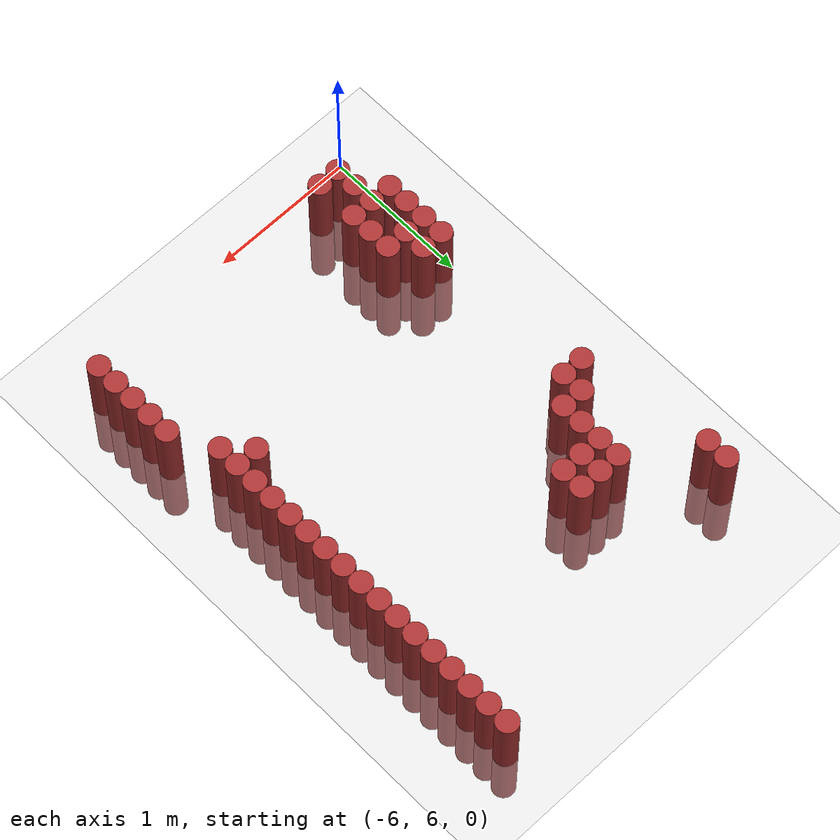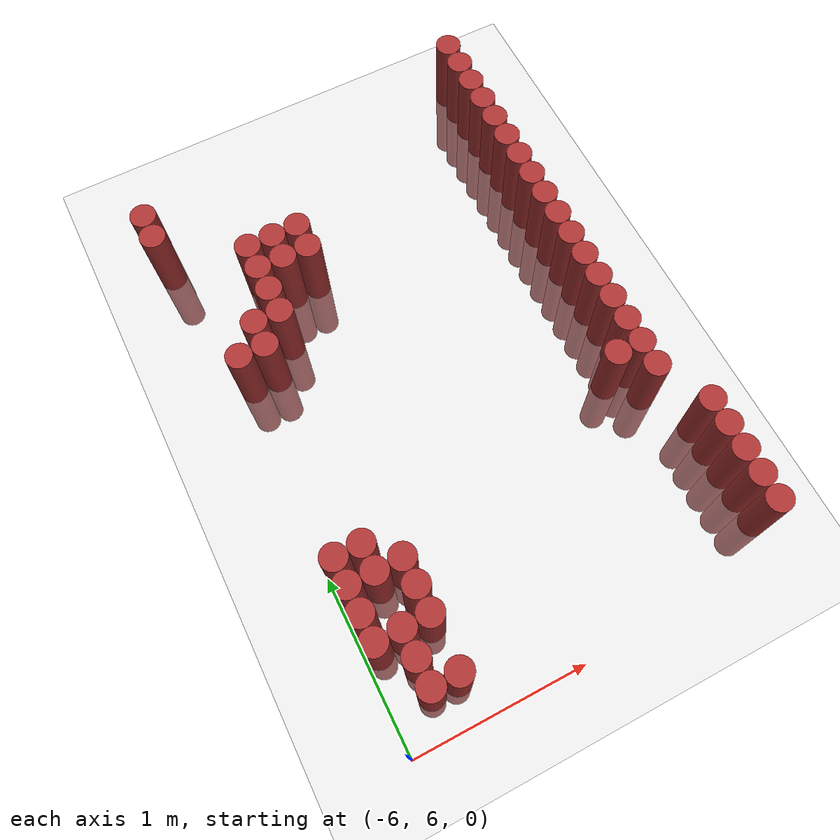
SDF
<sdf version="1.6">
 <world name="default">
  <model name="ground_plane">
   <static>1</static>
   <link name="link">
    <collision name="collision">
     <geometry><plane><normal>0 0 1</normal><size>100 100</size></plane></geometry>
     <surface><friction><ode><mu>100</mu><mu2>50</mu2></ode></friction></surface>
    </collision>
    <visual name="visual">
     <cast_shadows>0</cast_shadows>
     <geometry><plane><normal>0 0 1</normal><size>100 100</size></plane></geometry>
     <material>
      <script><uri>file://media/materials/scripts/gazebo.material</uri><name>Gazebo/Grey</name></script>
     </material>
    </visual>
   </link>
  </model>
  <model name="unit_cylinder_248">
   <static>1</static>
   <pose>-6.075000 9.075000 0.000000 0.000000 0.000000 0.000000</pose>
   <link name="link">
    <inertial>
     <mass>1</mass>
     <inertia><ixx>0.145833</ixx><ixy>0</ixy><ixz>0</ixz><iyy>0.145833</iyy><iyz>0</iyz><izz>0.125</izz></inertia>
    </inertial>
    <collision name="collision">
     <geometry><cylinder><radius>0.075000</radius><length>1</length></cylinder></geometry>
    </collision>
    <visual name="visual">
     <geometry><cylinder><radius>0.075000</radius><length>1</length></cylinder></geometry>
     <material>
      <ambient>0.648000 0.192000 0.192000 1</ambient>
      <diffuse>0.648000 0.192000 0.192000 1</diffuse>
     </material>
     <material>
      <script><name>Gazebo/Grey</name><uri>file://media/materials/scripts/gazebo.material</uri></script>
     </material>
    </visual>
   </link>
  </model>
  <model name="unit_cylinder_249">
   <static>1</static>
   <pose>-6.075000 9.225000 0.000000 0.000000 0.000000 0.000000</pose>
   <link name="link">
    <inertial>
     <mass>1</mass>
     <inertia><ixx>0.145833</ixx><ixy>0</ixy><ixz>0</ixz><iyy>0.145833</iyy><iyz>0</iyz><izz>0.125</izz></inertia>
    </inertial>
    <collision name="collision">
     <geometry><cylinder><radius>0.075000</radius><length>1</length></cylinder></geometry>
    </collision>
    <visual name="visual">
     <geometry><cylinder><radius>0.075000</radius><length>1</length></cylinder></geometry>
     <material>
      <ambient>0.648000 0.192000 0.192000 1</ambient>
      <diffuse>0.648000 0.192000 0.192000 1</diffuse>
     </material>
     <material>
      <script><name>Gazebo/Grey</name><uri>file://media/materials/scripts/gazebo.material</uri></script>
     </material>
    </visual>
   </link>
  </model>
  <model name="unit_cylinder_250">
   <static>1</static>
   <pose>-5.925000 6.525000 0.000000 0.000000 0.000000 0.000000</pose>
   <link name="link">
    <inertial>
     <mass>1</mass>
     <inertia><ixx>0.145833</ixx><ixy>0</ixy><ixz>0</ixz><iyy>0.145833</iyy><iyz>0</iyz><izz>0.125</izz></inertia>
    </inertial>
    <collision name="collision">
     <geometry><cylinder><radius>0.075000</radius><length>1</length></cylinder></geometry>
    </collision>
    <visual name="visual">
     <geometry><cylinder><radius>0.075000</radius><length>1</length></cylinder></geometry>
     <material>
      <ambient>0.648000 0.192000 0.192000 1</ambient>
      <diffuse>0.648000 0.192000 0.192000 1</diffuse>
     </material>
     <material>
      <script><name>Gazebo/Grey</name><uri>file://media/materials/scripts/gazebo.material</uri></script>
     </material>
    </visual>
   </link>
  </model>
  <model name="unit_cylinder_251">
   <static>1</static>
   <pose>-5.925000 6.675000 0.000000 0.000000 0.000000 0.000000</pose>
   <link name="link">
    <inertial>
     <mass>1</mass>
     <inertia><ixx>0.145833</ixx><ixy>0</ixy><ixz>0</ixz><iyy>0.145833</iyy><iyz>0</iyz><izz>0.125</izz></inertia>
    </inertial>
    <collision name="collision">
     <geometry><cylinder><radius>0.075000</radius><length>1</length></cylinder></geometry>
    </collision>
    <visual name="visual">
     <geometry><cylinder><radius>0.075000</radius><length>1</length></cylinder></geometry>
     <material>
      <ambient>0.648000 0.192000 0.192000 1</ambient>
      <diffuse>0.648000 0.192000 0.192000 1</diffuse>
     </material>
     <material>
      <script><name>Gazebo/Grey</name><uri>file://media/materials/scripts/gazebo.material</uri></script>
     </material>
    </visual>
   </link>
  </model>
  <model name="unit_cylinder_252">
   <static>1</static>
   <pose>-5.925000 6.825000 0.000000 0.000000 0.000000 0.000000</pose>
   <link name="link">
    <inertial>
     <mass>1</mass>
     <inertia><ixx>0.145833</ixx><ixy>0</ixy><ixz>0</ixz><iyy>0.145833</iyy><iyz>0</iyz><izz>0.125</izz></inertia>
    </inertial>
    <collision name="collision">
     <geometry><cylinder><radius>0.075000</radius><length>1</length></cylinder></geometry>
    </collision>
    <visual name="visual">
     <geometry><cylinder><radius>0.075000</radius><length>1</length></cylinder></geometry>
     <material>
      <ambient>0.648000 0.192000 0.192000 1</ambient>
      <diffuse>0.648000 0.192000 0.192000 1</diffuse>
     </material>
     <material>
      <script><name>Gazebo/Grey</name><uri>file://media/materials/scripts/gazebo.material</uri></script>
     </material>
    </visual>
   </link>
  </model>
  <model name="unit_cylinder_253">
   <static>1</static>
   <pose>-5.925000 6.975000 0.000000 0.000000 0.000000 0.000000</pose>
   <link name="link">
    <inertial>
     <mass>1</mass>
     <inertia><ixx>0.145833</ixx><ixy>0</ixy><ixz>0</ixz><iyy>0.145833</iyy><iyz>0</iyz><izz>0.125</izz></inertia>
    </inertial>
    <collision name="collision">
     <geometry><cylinder><radius>0.075000</radius><length>1</length></cylinder></geometry>
    </collision>
    <visual name="visual">
     <geometry><cylinder><radius>0.075000</radius><length>1</length></cylinder></geometry>
     <material>
      <ambient>0.648000 0.192000 0.192000 1</ambient>
      <diffuse>0.648000 0.192000 0.192000 1</diffuse>
     </material>
     <material>
      <script><name>Gazebo/Grey</name><uri>file://media/materials/scripts/gazebo.material</uri></script>
     </material>
    </visual>
   </link>
  </model>
  <model name="unit_cylinder_254">
   <static>1</static>
   <pose>-5.925000 8.175000 0.000000 0.000000 0.000000 0.000000</pose>
   <link name="link">
    <inertial>
     <mass>1</mass>
     <inertia><ixx>0.145833</ixx><ixy>0</ixy><ixz>0</ixz><iyy>0.145833</iyy><iyz>0</iyz><izz>0.125</izz></inertia>
    </inertial>
    <collision name="collision">
     <geometry><cylinder><radius>0.075000</radius><length>1</length></cylinder></geometry>
    </collision>
    <visual name="visual">
     <geometry><cylinder><radius>0.075000</radius><length>1</length></cylinder></geometry>
     <material>
      <ambient>0.648000 0.192000 0.192000 1</ambient>
      <diffuse>0.648000 0.192000 0.192000 1</diffuse>
     </material>
     <material>
      <script><name>Gazebo/Grey</name><uri>file://media/materials/scripts/gazebo.material</uri></script>
     </material>
    </visual>
   </link>
  </model>
  <model name="unit_cylinder_257">
   <static>1</static>
   <pose>-5.775000 6.225000 0.000000 0.000000 0.000000 0.000000</pose>
   <link name="link">
    <inertial>
     <mass>1</mass>
     <inertia><ixx>0.145833</ixx><ixy>0</ixy><ixz>0</ixz><iyy>0.145833</iyy><iyz>0</iyz><izz>0.125</izz></inertia>
    </inertial>
    <collision name="collision">
     <geometry><cylinder><radius>0.075000</radius><length>1</length></cylinder></geometry>
    </collision>
    <visual name="visual">
     <geometry><cylinder><radius>0.075000</radius><length>1</length></cylinder></geometry>
     <material>
      <ambient>0.648000 0.192000 0.192000 1</ambient>
      <diffuse>0.648000 0.192000 0.192000 1</diffuse>
     </material>
     <material>
      <script><name>Gazebo/Grey</name><uri>file://media/materials/scripts/gazebo.material</uri></script>
     </material>
    </visual>
   </link>
  </model>
  <model name="unit_cylinder_258">
   <static>1</static>
   <pose>-5.775000 6.375000 0.000000 0.000000 0.000000 0.000000</pose>
   <link name="link">
    <inertial>
     <mass>1</mass>
     <inertia><ixx>0.145833</ixx><ixy>0</ixy><ixz>0</ixz><iyy>0.145833</iyy><iyz>0</iyz><izz>0.125</izz></inertia>
    </inertial>
    <collision name="collision">
     <geometry><cylinder><radius>0.075000</radius><length>1</length></cylinder></geometry>
    </collision>
    <visual name="visual">
     <geometry><cylinder><radius>0.075000</radius><length>1</length></cylinder></geometry>
     <material>
      <ambient>0.648000 0.192000 0.192000 1</ambient>
      <diffuse>0.648000 0.192000 0.192000 1</diffuse>
     </material>
     <material>
      <script><name>Gazebo/Grey</name><uri>file://media/materials/scripts/gazebo.material</uri></script>
     </material>
    </visual>
   </link>
  </model>
  <model name="unit_cylinder_259">
   <static>1</static>
   <pose>-5.775000 6.525000 0.000000 0.000000 0.000000 0.000000</pose>
   <link name="link">
    <inertial>
     <mass>1</mass>
     <inertia><ixx>0.145833</ixx><ixy>0</ixy><ixz>0</ixz><iyy>0.145833</iyy><iyz>0</iyz><izz>0.125</izz></inertia>
    </inertial>
    <collision name="collision">
     <geometry><cylinder><radius>0.075000</radius><length>1</length></cylinder></geometry>
    </collision>
    <visual name="visual">
     <geometry><cylinder><radius>0.075000</radius><length>1</length></cylinder></geometry>
     <material>
      <ambient>0.648000 0.192000 0.192000 1</ambient>
      <diffuse>0.648000 0.192000 0.192000 1</diffuse>
     </material>
     <material>
      <script><name>Gazebo/Grey</name><uri>file://media/materials/scripts/gazebo.material</uri></script>
     </material>
    </visual>
   </link>
  </model>
  <model name="unit_cylinder_260">
   <static>1</static>
   <pose>-5.775000 6.825000 0.000000 0.000000 0.000000 0.000000</pose>
   <link name="link">
    <inertial>
     <mass>1</mass>
     <inertia><ixx>0.145833</ixx><ixy>0</ixy><ixz>0</ixz><iyy>0.145833</iyy><iyz>0</iyz><izz>0.125</izz></inertia>
    </inertial>
    <collision name="collision">
     <geometry><cylinder><radius>0.075000</radius><length>1</length></cylinder></geometry>
    </collision>
    <visual name="visual">
     <geometry><cylinder><radius>0.075000</radius><length>1</length></cylinder></geometry>
     <material>
      <ambient>0.648000 0.192000 0.192000 1</ambient>
      <diffuse>0.648000 0.192000 0.192000 1</diffuse>
     </material>
     <material>
      <script><name>Gazebo/Grey</name><uri>file://media/materials/scripts/gazebo.material</uri></script>
     </material>
    </visual>
   </link>
  </model>
  <model name="unit_cylinder_261">
   <static>1</static>
   <pose>-5.775000 6.975000 0.000000 0.000000 0.000000 0.000000</pose>
   <link name="link">
    <inertial>
     <mass>1</mass>
     <inertia><ixx>0.145833</ixx><ixy>0</ixy><ixz>0</ixz><iyy>0.145833</iyy><iyz>0</iyz><izz>0.125</izz></inertia>
    </inertial>
    <collision name="collision">
     <geometry><cylinder><radius>0.075000</radius><length>1</length></cylinder></geometry>
    </collision>
    <visual name="visual">
     <geometry><cylinder><radius>0.075000</radius><length>1</length></cylinder></geometry>
     <material>
      <ambient>0.648000 0.192000 0.192000 1</ambient>
      <diffuse>0.648000 0.192000 0.192000 1</diffuse>
     </material>
     <material>
      <script><name>Gazebo/Grey</name><uri>file://media/materials/scripts/gazebo.material</uri></script>
     </material>
    </visual>
   </link>
  </model>
  <model name="unit_cylinder_262">
   <static>1</static>
   <pose>-5.775000 8.175000 0.000000 0.000000 0.000000 0.000000</pose>
   <link name="link">
    <inertial>
     <mass>1</mass>
     <inertia><ixx>0.145833</ixx><ixy>0</ixy><ixz>0</ixz><iyy>0.145833</iyy><iyz>0</iyz><izz>0.125</izz></inertia>
    </inertial>
    <collision name="collision">
     <geometry><cylinder><radius>0.075000</radius><length>1</length></cylinder></geometry>
    </collision>
    <visual name="visual">
     <geometry><cylinder><radius>0.075000</radius><length>1</length></cylinder></geometry>
     <material>
      <ambient>0.648000 0.192000 0.192000 1</ambient>
      <diffuse>0.648000 0.192000 0.192000 1</diffuse>
     </material>
     <material>
      <script><name>Gazebo/Grey</name><uri>file://media/materials/scripts/gazebo.material</uri></script>
     </material>
    </visual>
   </link>
  </model>
  <model name="unit_cylinder_263">
   <static>1</static>
   <pose>-5.775000 8.325000 0.000000 0.000000 0.000000 0.000000</pose>
   <link name="link">
    <inertial>
     <mass>1</mass>
     <inertia><ixx>0.145833</ixx><ixy>0</ixy><ixz>0</ixz><iyy>0.145833</iyy><iyz>0</iyz><izz>0.125</izz></inertia>
    </inertial>
    <collision name="collision">
     <geometry><cylinder><radius>0.075000</radius><length>1</length></cylinder></geometry>
    </collision>
    <visual name="visual">
     <geometry><cylinder><radius>0.075000</radius><length>1</length></cylinder></geometry>
     <material>
      <ambient>0.648000 0.192000 0.192000 1</ambient>
      <diffuse>0.648000 0.192000 0.192000 1</diffuse>
     </material>
     <material>
      <script><name>Gazebo/Grey</name><uri>file://media/materials/scripts/gazebo.material</uri></script>
     </material>
    </visual>
   </link>
  </model>
  <model name="unit_cylinder_266">
   <static>1</static>
   <pose>-5.625000 6.225000 0.000000 0.000000 0.000000 0.000000</pose>
   <link name="link">
    <inertial>
     <mass>1</mass>
     <inertia><ixx>0.145833</ixx><ixy>0</ixy><ixz>0</ixz><iyy>0.145833</iyy><iyz>0</iyz><izz>0.125</izz></inertia>
    </inertial>
    <collision name="collision">
     <geometry><cylinder><radius>0.075000</radius><length>1</length></cylinder></geometry>
    </collision>
    <visual name="visual">
     <geometry><cylinder><radius>0.075000</radius><length>1</length></cylinder></geometry>
     <material>
      <ambient>0.648000 0.192000 0.192000 1</ambient>
      <diffuse>0.648000 0.192000 0.192000 1</diffuse>
     </material>
     <material>
      <script><name>Gazebo/Grey</name><uri>file://media/materials/scripts/gazebo.material</uri></script>
     </material>
    </visual>
   </link>
  </model>
  <model name="unit_cylinder_267">
   <static>1</static>
   <pose>-5.625000 6.525000 0.000000 0.000000 0.000000 0.000000</pose>
   <link name="link">
    <inertial>
     <mass>1</mass>
     <inertia><ixx>0.145833</ixx><ixy>0</ixy><ixz>0</ixz><iyy>0.145833</iyy><iyz>0</iyz><izz>0.125</izz></inertia>
    </inertial>
    <collision name="collision">
     <geometry><cylinder><radius>0.075000</radius><length>1</length></cylinder></geometry>
    </collision>
    <visual name="visual">
     <geometry><cylinder><radius>0.075000</radius><length>1</length></cylinder></geometry>
     <material>
      <ambient>0.648000 0.192000 0.192000 1</ambient>
      <diffuse>0.648000 0.192000 0.192000 1</diffuse>
     </material>
     <material>
      <script><name>Gazebo/Grey</name><uri>file://media/materials/scripts/gazebo.material</uri></script>
     </material>
    </visual>
   </link>
  </model>
  <model name="unit_cylinder_268">
   <static>1</static>
   <pose>-5.625000 6.675000 0.000000 0.000000 0.000000 0.000000</pose>
   <link name="link">
    <inertial>
     <mass>1</mass>
     <inertia><ixx>0.145833</ixx><ixy>0</ixy><ixz>0</ixz><iyy>0.145833</iyy><iyz>0</iyz><izz>0.125</izz></inertia>
    </inertial>
    <collision name="collision">
     <geometry><cylinder><radius>0.075000</radius><length>1</length></cylinder></geometry>
    </collision>
    <visual name="visual">
     <geometry><cylinder><radius>0.075000</radius><length>1</length></cylinder></geometry>
     <material>
      <ambient>0.648000 0.192000 0.192000 1</ambient>
      <diffuse>0.648000 0.192000 0.192000 1</diffuse>
     </material>
     <material>
      <script><name>Gazebo/Grey</name><uri>file://media/materials/scripts/gazebo.material</uri></script>
     </material>
    </visual>
   </link>
  </model>
  <model name="unit_cylinder_269">
   <static>1</static>
   <pose>-5.625000 6.825000 0.000000 0.000000 0.000000 0.000000</pose>
   <link name="link">
    <inertial>
     <mass>1</mass>
     <inertia><ixx>0.145833</ixx><ixy>0</ixy><ixz>0</ixz><iyy>0.145833</iyy><iyz>0</iyz><izz>0.125</izz></inertia>
    </inertial>
    <collision name="collision">
     <geometry><cylinder><radius>0.075000</radius><length>1</length></cylinder></geometry>
    </collision>
    <visual name="visual">
     <geometry><cylinder><radius>0.075000</radius><length>1</length></cylinder></geometry>
     <material>
      <ambient>0.648000 0.192000 0.192000 1</ambient>
      <diffuse>0.648000 0.192000 0.192000 1</diffuse>
     </material>
     <material>
      <script><name>Gazebo/Grey</name><uri>file://media/materials/scripts/gazebo.material</uri></script>
     </material>
    </visual>
   </link>
  </model>
  <model name="unit_cylinder_270">
   <static>1</static>
   <pose>-5.625000 8.325000 0.000000 0.000000 0.000000 0.000000</pose>
   <link name="link">
    <inertial>
     <mass>1</mass>
     <inertia><ixx>0.145833</ixx><ixy>0</ixy><ixz>0</ixz><iyy>0.145833</iyy><iyz>0</iyz><izz>0.125</izz></inertia>
    </inertial>
    <collision name="collision">
     <geometry><cylinder><radius>0.075000</radius><length>1</length></cylinder></geometry>
    </collision>
    <visual name="visual">
     <geometry><cylinder><radius>0.075000</radius><length>1</length></cylinder></geometry>
     <material>
      <ambient>0.648000 0.192000 0.192000 1</ambient>
      <diffuse>0.648000 0.192000 0.192000 1</diffuse>
     </material>
     <material>
      <script><name>Gazebo/Grey</name><uri>file://media/materials/scripts/gazebo.material</uri></script>
     </material>
    </visual>
   </link>
  </model>
  <model name="unit_cylinder_271">
   <static>1</static>
   <pose>-5.625000 8.475000 0.000000 0.000000 0.000000 0.000000</pose>
   <link name="link">
    <inertial>
     <mass>1</mass>
     <inertia><ixx>0.145833</ixx><ixy>0</ixy><ixz>0</ixz><iyy>0.145833</iyy><iyz>0</iyz><izz>0.125</izz></inertia>
    </inertial>
    <collision name="collision">
     <geometry><cylinder><radius>0.075000</radius><length>1</length></cylinder></geometry>
    </collision>
    <visual name="visual">
     <geometry><cylinder><radius>0.075000</radius><length>1</length></cylinder></geometry>
     <material>
      <ambient>0.648000 0.192000 0.192000 1</ambient>
      <diffuse>0.648000 0.192000 0.192000 1</diffuse>
     </material>
     <material>
      <script><name>Gazebo/Grey</name><uri>file://media/materials/scripts/gazebo.material</uri></script>
     </material>
    </visual>
   </link>
  </model>
  <model name="unit_cylinder_272">
   <static>1</static>
   <pose>-5.625000 8.625000 0.000000 0.000000 0.000000 0.000000</pose>
   <link name="link">
    <inertial>
     <mass>1</mass>
     <inertia><ixx>0.145833</ixx><ixy>0</ixy><ixz>0</ixz><iyy>0.145833</iyy><iyz>0</iyz><izz>0.125</izz></inertia>
    </inertial>
    <collision name="collision">
     <geometry><cylinder><radius>0.075000</radius><length>1</length></cylinder></geometry>
    </collision>
    <visual name="visual">
     <geometry><cylinder><radius>0.075000</radius><length>1</length></cylinder></geometry>
     <material>
      <ambient>0.648000 0.192000 0.192000 1</ambient>
      <diffuse>0.648000 0.192000 0.192000 1</diffuse>
     </material>
     <material>
      <script><name>Gazebo/Grey</name><uri>file://media/materials/scripts/gazebo.material</uri></script>
     </material>
    </visual>
   </link>
  </model>
  <model name="unit_cylinder_273">
   <static>1</static>
   <pose>-5.625000 8.775000 0.000000 0.000000 0.000000 0.000000</pose>
   <link name="link">
    <inertial>
     <mass>1</mass>
     <inertia><ixx>0.145833</ixx><ixy>0</ixy><ixz>0</ixz><iyy>0.145833</iyy><iyz>0</iyz><izz>0.125</izz></inertia>
    </inertial>
    <collision name="collision">
     <geometry><cylinder><radius>0.075000</radius><length>1</length></cylinder></geometry>
    </collision>
    <visual name="visual">
     <geometry><cylinder><radius>0.075000</radius><length>1</length></cylinder></geometry>
     <material>
      <ambient>0.648000 0.192000 0.192000 1</ambient>
      <diffuse>0.648000 0.192000 0.192000 1</diffuse>
     </material>
     <material>
      <script><name>Gazebo/Grey</name><uri>file://media/materials/scripts/gazebo.material</uri></script>
     </material>
    </visual>
   </link>
  </model>
  <model name="unit_cylinder_276">
   <static>1</static>
   <pose>-5.475000 8.625000 0.000000 0.000000 0.000000 0.000000</pose>
   <link name="link">
    <inertial>
     <mass>1</mass>
     <inertia><ixx>0.145833</ixx><ixy>0</ixy><ixz>0</ixz><iyy>0.145833</iyy><iyz>0</iyz><izz>0.125</izz></inertia>
    </inertial>
    <collision name="collision">
     <geometry><cylinder><radius>0.075000</radius><length>1</length></cylinder></geometry>
    </collision>
    <visual name="visual">
     <geometry><cylinder><radius>0.075000</radius><length>1</length></cylinder></geometry>
     <material>
      <ambient>0.648000 0.192000 0.192000 1</ambient>
      <diffuse>0.648000 0.192000 0.192000 1</diffuse>
     </material>
     <material>
      <script><name>Gazebo/Grey</name><uri>file://media/materials/scripts/gazebo.material</uri></script>
     </material>
    </visual>
   </link>
  </model>
  <model name="unit_cylinder_277">
   <static>1</static>
   <pose>-5.475000 8.775000 0.000000 0.000000 0.000000 0.000000</pose>
   <link name="link">
    <inertial>
     <mass>1</mass>
     <inertia><ixx>0.145833</ixx><ixy>0</ixy><ixz>0</ixz><iyy>0.145833</iyy><iyz>0</iyz><izz>0.125</izz></inertia>
    </inertial>
    <collision name="collision">
     <geometry><cylinder><radius>0.075000</radius><length>1</length></cylinder></geometry>
    </collision>
    <visual name="visual">
     <geometry><cylinder><radius>0.075000</radius><length>1</length></cylinder></geometry>
     <material>
      <ambient>0.648000 0.192000 0.192000 1</ambient>
      <diffuse>0.648000 0.192000 0.192000 1</diffuse>
     </material>
     <material>
      <script><name>Gazebo/Grey</name><uri>file://media/materials/scripts/gazebo.material</uri></script>
     </material>
    </visual>
   </link>
  </model>
  <model name="unit_cylinder_281">
   <static>1</static>
   <pose>-5.325000 8.625000 0.000000 0.000000 0.000000 0.000000</pose>
   <link name="link">
    <inertial>
     <mass>1</mass>
     <inertia><ixx>0.145833</ixx><ixy>0</ixy><ixz>0</ixz><iyy>0.145833</iyy><iyz>0</iyz><izz>0.125</izz></inertia>
    </inertial>
    <collision name="collision">
     <geometry><cylinder><radius>0.075000</radius><length>1</length></cylinder></geometry>
    </collision>
    <visual name="visual">
     <geometry><cylinder><radius>0.075000</radius><length>1</length></cylinder></geometry>
     <material>
      <ambient>0.648000 0.192000 0.192000 1</ambient>
      <diffuse>0.648000 0.192000 0.192000 1</diffuse>
     </material>
     <material>
      <script><name>Gazebo/Grey</name><uri>file://media/materials/scripts/gazebo.material</uri></script>
     </material>
    </visual>
   </link>
  </model>
  <model name="unit_cylinder_282">
   <static>1</static>
   <pose>-5.325000 8.775000 0.000000 0.000000 0.000000 0.000000</pose>
   <link name="link">
    <inertial>
     <mass>1</mass>
     <inertia><ixx>0.145833</ixx><ixy>0</ixy><ixz>0</ixz><iyy>0.145833</iyy><iyz>0</iyz><izz>0.125</izz></inertia>
    </inertial>
    <collision name="collision">
     <geometry><cylinder><radius>0.075000</radius><length>1</length></cylinder></geometry>
    </collision>
    <visual name="visual">
     <geometry><cylinder><radius>0.075000</radius><length>1</length></cylinder></geometry>
     <material>
      <ambient>0.648000 0.192000 0.192000 1</ambient>
      <diffuse>0.648000 0.192000 0.192000 1</diffuse>
     </material>
     <material>
      <script><name>Gazebo/Grey</name><uri>file://media/materials/scripts/gazebo.material</uri></script>
     </material>
    </visual>
   </link>
  </model>
  <model name="unit_cylinder_284">
   <static>1</static>
   <pose>-4.125000 7.275000 0.000000 0.000000 0.000000 0.000000</pose>
   <link name="link">
    <inertial>
     <mass>1</mass>
     <inertia><ixx>0.145833</ixx><ixy>0</ixy><ixz>0</ixz><iyy>0.145833</iyy><iyz>0</iyz><izz>0.125</izz></inertia>
    </inertial>
    <collision name="collision">
     <geometry><cylinder><radius>0.075000</radius><length>1</length></cylinder></geometry>
    </collision>
    <visual name="visual">
     <geometry><cylinder><radius>0.075000</radius><length>1</length></cylinder></geometry>
     <material>
      <ambient>0.648000 0.192000 0.192000 1</ambient>
      <diffuse>0.648000 0.192000 0.192000 1</diffuse>
     </material>
     <material>
      <script><name>Gazebo/Grey</name><uri>file://media/materials/scripts/gazebo.material</uri></script>
     </material>
    </visual>
   </link>
  </model>
  <model name="unit_cylinder_285">
   <static>1</static>
   <pose>-3.975000 7.125000 0.000000 0.000000 0.000000 0.000000</pose>
   <link name="link">
    <inertial>
     <mass>1</mass>
     <inertia><ixx>0.145833</ixx><ixy>0</ixy><ixz>0</ixz><iyy>0.145833</iyy><iyz>0</iyz><izz>0.125</izz></inertia>
    </inertial>
    <collision name="collision">
     <geometry><cylinder><radius>0.075000</radius><length>1</length></cylinder></geometry>
    </collision>
    <visual name="visual">
     <geometry><cylinder><radius>0.075000</radius><length>1</length></cylinder></geometry>
     <material>
      <ambient>0.648000 0.192000 0.192000 1</ambient>
      <diffuse>0.648000 0.192000 0.192000 1</diffuse>
     </material>
     <material>
      <script><name>Gazebo/Grey</name><uri>file://media/materials/scripts/gazebo.material</uri></script>
     </material>
    </visual>
   </link>
  </model>
  <model name="unit_cylinder_286">
   <static>1</static>
   <pose>-3.975000 7.275000 0.000000 0.000000 0.000000 0.000000</pose>
   <link name="link">
    <inertial>
     <mass>1</mass>
     <inertia><ixx>0.145833</ixx><ixy>0</ixy><ixz>0</ixz><iyy>0.145833</iyy><iyz>0</iyz><izz>0.125</izz></inertia>
    </inertial>
    <collision name="collision">
     <geometry><cylinder><radius>0.075000</radius><length>1</length></cylinder></geometry>
    </collision>
    <visual name="visual">
     <geometry><cylinder><radius>0.075000</radius><length>1</length></cylinder></geometry>
     <material>
      <ambient>0.648000 0.192000 0.192000 1</ambient>
      <diffuse>0.648000 0.192000 0.192000 1</diffuse>
     </material>
     <material>
      <script><name>Gazebo/Grey</name><uri>file://media/materials/scripts/gazebo.material</uri></script>
     </material>
    </visual>
   </link>
  </model>
  <model name="unit_cylinder_287">
   <static>1</static>
   <pose>-3.975000 7.425000 0.000000 0.000000 0.000000 0.000000</pose>
   <link name="link">
    <inertial>
     <mass>1</mass>
     <inertia><ixx>0.145833</ixx><ixy>0</ixy><ixz>0</ixz><iyy>0.145833</iyy><iyz>0</iyz><izz>0.125</izz></inertia>
    </inertial>
    <collision name="collision">
     <geometry><cylinder><radius>0.075000</radius><length>1</length></cylinder></geometry>
    </collision>
    <visual name="visual">
     <geometry><cylinder><radius>0.075000</radius><length>1</length></cylinder></geometry>
     <material>
      <ambient>0.648000 0.192000 0.192000 1</ambient>
      <diffuse>0.648000 0.192000 0.192000 1</diffuse>
     </material>
     <material>
      <script><name>Gazebo/Grey</name><uri>file://media/materials/scripts/gazebo.material</uri></script>
     </material>
    </visual>
   </link>
  </model>
  <model name="unit_cylinder_288">
   <static>1</static>
   <pose>-3.975000 7.575000 0.000000 0.000000 0.000000 0.000000</pose>
   <link name="link">
    <inertial>
     <mass>1</mass>
     <inertia><ixx>0.145833</ixx><ixy>0</ixy><ixz>0</ixz><iyy>0.145833</iyy><iyz>0</iyz><izz>0.125</izz></inertia>
    </inertial>
    <collision name="collision">
     <geometry><cylinder><radius>0.075000</radius><length>1</length></cylinder></geometry>
    </collision>
    <visual name="visual">
     <geometry><cylinder><radius>0.075000</radius><length>1</length></cylinder></geometry>
     <material>
      <ambient>0.648000 0.192000 0.192000 1</ambient>
      <diffuse>0.648000 0.192000 0.192000 1</diffuse>
     </material>
     <material>
      <script><name>Gazebo/Grey</name><uri>file://media/materials/scripts/gazebo.material</uri></script>
     </material>
    </visual>
   </link>
  </model>
  <model name="unit_cylinder_289">
   <static>1</static>
   <pose>-3.975000 7.725000 0.000000 0.000000 0.000000 0.000000</pose>
   <link name="link">
    <inertial>
     <mass>1</mass>
     <inertia><ixx>0.145833</ixx><ixy>0</ixy><ixz>0</ixz><iyy>0.145833</iyy><iyz>0</iyz><izz>0.125</izz></inertia>
    </inertial>
    <collision name="collision">
     <geometry><cylinder><radius>0.075000</radius><length>1</length></cylinder></geometry>
    </collision>
    <visual name="visual">
     <geometry><cylinder><radius>0.075000</radius><length>1</length></cylinder></geometry>
     <material>
      <ambient>0.648000 0.192000 0.192000 1</ambient>
      <diffuse>0.648000 0.192000 0.192000 1</diffuse>
     </material>
     <material>
      <script><name>Gazebo/Grey</name><uri>file://media/materials/scripts/gazebo.material</uri></script>
     </material>
    </visual>
   </link>
  </model>
  <model name="unit_cylinder_290">
   <static>1</static>
   <pose>-3.975000 7.875000 0.000000 0.000000 0.000000 0.000000</pose>
   <link name="link">
    <inertial>
     <mass>1</mass>
     <inertia><ixx>0.145833</ixx><ixy>0</ixy><ixz>0</ixz><iyy>0.145833</iyy><iyz>0</iyz><izz>0.125</izz></inertia>
    </inertial>
    <collision name="collision">
     <geometry><cylinder><radius>0.075000</radius><length>1</length></cylinder></geometry>
    </collision>
    <visual name="visual">
     <geometry><cylinder><radius>0.075000</radius><length>1</length></cylinder></geometry>
     <material>
      <ambient>0.648000 0.192000 0.192000 1</ambient>
      <diffuse>0.648000 0.192000 0.192000 1</diffuse>
     </material>
     <material>
      <script><name>Gazebo/Grey</name><uri>file://media/materials/scripts/gazebo.material</uri></script>
     </material>
    </visual>
   </link>
  </model>
  <model name="unit_cylinder_291">
   <static>1</static>
   <pose>-3.975000 8.025000 0.000000 0.000000 0.000000 0.000000</pose>
   <link name="link">
    <inertial>
     <mass>1</mass>
     <inertia><ixx>0.145833</ixx><ixy>0</ixy><ixz>0</ixz><iyy>0.145833</iyy><iyz>0</iyz><izz>0.125</izz></inertia>
    </inertial>
    <collision name="collision">
     <geometry><cylinder><radius>0.075000</radius><length>1</length></cylinder></geometry>
    </collision>
    <visual name="visual">
     <geometry><cylinder><radius>0.075000</radius><length>1</length></cylinder></geometry>
     <material>
      <ambient>0.648000 0.192000 0.192000 1</ambient>
      <diffuse>0.648000 0.192000 0.192000 1</diffuse>
     </material>
     <material>
      <script><name>Gazebo/Grey</name><uri>file://media/materials/scripts/gazebo.material</uri></script>
     </material>
    </visual>
   </link>
  </model>
  <model name="unit_cylinder_292">
   <static>1</static>
   <pose>-3.975000 8.175000 0.000000 0.000000 0.000000 0.000000</pose>
   <link name="link">
    <inertial>
     <mass>1</mass>
     <inertia><ixx>0.145833</ixx><ixy>0</ixy><ixz>0</ixz><iyy>0.145833</iyy><iyz>0</iyz><izz>0.125</izz></inertia>
    </inertial>
    <collision name="collision">
     <geometry><cylinder><radius>0.075000</radius><length>1</length></cylinder></geometry>
    </collision>
    <visual name="visual">
     <geometry><cylinder><radius>0.075000</radius><length>1</length></cylinder></geometry>
     <material>
      <ambient>0.648000 0.192000 0.192000 1</ambient>
      <diffuse>0.648000 0.192000 0.192000 1</diffuse>
     </material>
     <material>
      <script><name>Gazebo/Grey</name><uri>file://media/materials/scripts/gazebo.material</uri></script>
     </material>
    </visual>
   </link>
  </model>
  <model name="unit_cylinder_293">
   <static>1</static>
   <pose>-3.975000 8.325000 0.000000 0.000000 0.000000 0.000000</pose>
   <link name="link">
    <inertial>
     <mass>1</mass>
     <inertia><ixx>0.145833</ixx><ixy>0</ixy><ixz>0</ixz><iyy>0.145833</iyy><iyz>0</iyz><izz>0.125</izz></inertia>
    </inertial>
    <collision name="collision">
     <geometry><cylinder><radius>0.075000</radius><length>1</length></cylinder></geometry>
    </collision>
    <visual name="visual">
     <geometry><cylinder><radius>0.075000</radius><length>1</length></cylinder></geometry>
     <material>
      <ambient>0.648000 0.192000 0.192000 1</ambient>
      <diffuse>0.648000 0.192000 0.192000 1</diffuse>
     </material>
     <material>
      <script><name>Gazebo/Grey</name><uri>file://media/materials/scripts/gazebo.material</uri></script>
     </material>
    </visual>
   </link>
  </model>
  <model name="unit_cylinder_294">
   <static>1</static>
   <pose>-3.975000 8.475000 0.000000 0.000000 0.000000 0.000000</pose>
   <link name="link">
    <inertial>
     <mass>1</mass>
     <inertia><ixx>0.145833</ixx><ixy>0</ixy><ixz>0</ixz><iyy>0.145833</iyy><iyz>0</iyz><izz>0.125</izz></inertia>
    </inertial>
    <collision name="collision">
     <geometry><cylinder><radius>0.075000</radius><length>1</length></cylinder></geometry>
    </collision>
    <visual name="visual">
     <geometry><cylinder><radius>0.075000</radius><length>1</length></cylinder></geometry>
     <material>
      <ambient>0.648000 0.192000 0.192000 1</ambient>
      <diffuse>0.648000 0.192000 0.192000 1</diffuse>
     </material>
     <material>
      <script><name>Gazebo/Grey</name><uri>file://media/materials/scripts/gazebo.material</uri></script>
     </material>
    </visual>
   </link>
  </model>
  <model name="unit_cylinder_295">
   <static>1</static>
   <pose>-3.975000 8.625000 0.000000 0.000000 0.000000 0.000000</pose>
   <link name="link">
    <inertial>
     <mass>1</mass>
     <inertia><ixx>0.145833</ixx><ixy>0</ixy><ixz>0</ixz><iyy>0.145833</iyy><iyz>0</iyz><izz>0.125</izz></inertia>
    </inertial>
    <collision name="collision">
     <geometry><cylinder><radius>0.075000</radius><length>1</length></cylinder></geometry>
    </collision>
    <visual name="visual">
     <geometry><cylinder><radius>0.075000</radius><length>1</length></cylinder></geometry>
     <material>
      <ambient>0.648000 0.192000 0.192000 1</ambient>
      <diffuse>0.648000 0.192000 0.192000 1</diffuse>
     </material>
     <material>
      <script><name>Gazebo/Grey</name><uri>file://media/materials/scripts/gazebo.material</uri></script>
     </material>
    </visual>
   </link>
  </model>
  <model name="unit_cylinder_296">
   <static>1</static>
   <pose>-3.975000 8.775000 0.000000 0.000000 0.000000 0.000000</pose>
   <link name="link">
    <inertial>
     <mass>1</mass>
     <inertia><ixx>0.145833</ixx><ixy>0</ixy><ixz>0</ixz><iyy>0.145833</iyy><iyz>0</iyz><izz>0.125</izz></inertia>
    </inertial>
    <collision name="collision">
     <geometry><cylinder><radius>0.075000</radius><length>1</length></cylinder></geometry>
    </collision>
    <visual name="visual">
     <geometry><cylinder><radius>0.075000</radius><length>1</length></cylinder></geometry>
     <material>
      <ambient>0.648000 0.192000 0.192000 1</ambient>
      <diffuse>0.648000 0.192000 0.192000 1</diffuse>
     </material>
     <material>
      <script><name>Gazebo/Grey</name><uri>file://media/materials/scripts/gazebo.material</uri></script>
     </material>
    </visual>
   </link>
  </model>
  <model name="unit_cylinder_297">
   <static>1</static>
   <pose>-3.975000 8.925000 0.000000 0.000000 0.000000 0.000000</pose>
   <link name="link">
    <inertial>
     <mass>1</mass>
     <inertia><ixx>0.145833</ixx><ixy>0</ixy><ixz>0</ixz><iyy>0.145833</iyy><iyz>0</iyz><izz>0.125</izz></inertia>
    </inertial>
    <collision name="collision">
     <geometry><cylinder><radius>0.075000</radius><length>1</length></cylinder></geometry>
    </collision>
    <visual name="visual">
     <geometry><cylinder><radius>0.075000</radius><length>1</length></cylinder></geometry>
     <material>
      <ambient>0.648000 0.192000 0.192000 1</ambient>
      <diffuse>0.648000 0.192000 0.192000 1</diffuse>
     </material>
     <material>
      <script><name>Gazebo/Grey</name><uri>file://media/materials/scripts/gazebo.material</uri></script>
     </material>
    </visual>
   </link>
  </model>
  <model name="unit_cylinder_298">
   <static>1</static>
   <pose>-3.975000 9.075000 0.000000 0.000000 0.000000 0.000000</pose>
   <link name="link">
    <inertial>
     <mass>1</mass>
     <inertia><ixx>0.145833</ixx><ixy>0</ixy><ixz>0</ixz><iyy>0.145833</iyy><iyz>0</iyz><izz>0.125</izz></inertia>
    </inertial>
    <collision name="collision">
     <geometry><cylinder><radius>0.075000</radius><length>1</length></cylinder></geometry>
    </collision>
    <visual name="visual">
     <geometry><cylinder><radius>0.075000</radius><length>1</length></cylinder></geometry>
     <material>
      <ambient>0.648000 0.192000 0.192000 1</ambient>
      <diffuse>0.648000 0.192000 0.192000 1</diffuse>
     </material>
     <material>
      <script><name>Gazebo/Grey</name><uri>file://media/materials/scripts/gazebo.material</uri></script>
     </material>
    </visual>
   </link>
  </model>
  <model name="unit_cylinder_299">
   <static>1</static>
   <pose>-3.975000 9.225000 0.000000 0.000000 0.000000 0.000000</pose>
   <link name="link">
    <inertial>
     <mass>1</mass>
     <inertia><ixx>0.145833</ixx><ixy>0</ixy><ixz>0</ixz><iyy>0.145833</iyy><iyz>0</iyz><izz>0.125</izz></inertia>
    </inertial>
    <collision name="collision">
     <geometry><cylinder><radius>0.075000</radius><length>1</length></cylinder></geometry>
    </collision>
    <visual name="visual">
     <geometry><cylinder><radius>0.075000</radius><length>1</length></cylinder></geometry>
     <material>
      <ambient>0.648000 0.192000 0.192000 1</ambient>
      <diffuse>0.648000 0.192000 0.192000 1</diffuse>
     </material>
     <material>
      <script><name>Gazebo/Grey</name><uri>file://media/materials/scripts/gazebo.material</uri></script>
     </material>
    </visual>
   </link>
  </model>
  <model name="unit_cylinder_300">
   <static>1</static>
   <pose>-3.975000 9.375000 0.000000 0.000000 0.000000 0.000000</pose>
   <link name="link">
    <inertial>
     <mass>1</mass>
     <inertia><ixx>0.145833</ixx><ixy>0</ixy><ixz>0</ixz><iyy>0.145833</iyy><iyz>0</iyz><izz>0.125</izz></inertia>
    </inertial>
    <collision name="collision">
     <geometry><cylinder><radius>0.075000</radius><length>1</length></cylinder></geometry>
    </collision>
    <visual name="visual">
     <geometry><cylinder><radius>0.075000</radius><length>1</length></cylinder></geometry>
     <material>
      <ambient>0.648000 0.192000 0.192000 1</ambient>
      <diffuse>0.648000 0.192000 0.192000 1</diffuse>
     </material>
     <material>
      <script><name>Gazebo/Grey</name><uri>file://media/materials/scripts/gazebo.material</uri></script>
     </material>
    </visual>
   </link>
  </model>
  <model name="unit_cylinder_301">
   <static>1</static>
   <pose>-3.975000 9.525000 0.000000 0.000000 0.000000 0.000000</pose>
   <link name="link">
    <inertial>
     <mass>1</mass>
     <inertia><ixx>0.145833</ixx><ixy>0</ixy><ixz>0</ixz><iyy>0.145833</iyy><iyz>0</iyz><izz>0.125</izz></inertia>
    </inertial>
    <collision name="collision">
     <geometry><cylinder><radius>0.075000</radius><length>1</length></cylinder></geometry>
    </collision>
    <visual name="visual">
     <geometry><cylinder><radius>0.075000</radius><length>1</length></cylinder></geometry>
     <material>
      <ambient>0.648000 0.192000 0.192000 1</ambient>
      <diffuse>0.648000 0.192000 0.192000 1</diffuse>
     </material>
     <material>
      <script><name>Gazebo/Grey</name><uri>file://media/materials/scripts/gazebo.material</uri></script>
     </material>
    </visual>
   </link>
  </model>
  <model name="unit_cylinder_309">
   <static>1</static>
   <pose>-3.825000 6.225000 0.000000 0.000000 0.000000 0.000000</pose>
   <link name="link">
    <inertial>
     <mass>1</mass>
     <inertia><ixx>0.145833</ixx><ixy>0</ixy><ixz>0</ixz><iyy>0.145833</iyy><iyz>0</iyz><izz>0.125</izz></inertia>
    </inertial>
    <collision name="collision">
     <geometry><cylinder><radius>0.075000</radius><length>1</length></cylinder></geometry>
    </collision>
    <visual name="visual">
     <geometry><cylinder><radius>0.075000</radius><length>1</length></cylinder></geometry>
     <material>
      <ambient>0.648000 0.192000 0.192000 1</ambient>
      <diffuse>0.648000 0.192000 0.192000 1</diffuse>
     </material>
     <material>
      <script><name>Gazebo/Grey</name><uri>file://media/materials/scripts/gazebo.material</uri></script>
     </material>
    </visual>
   </link>
  </model>
  <model name="unit_cylinder_310">
   <static>1</static>
   <pose>-3.825000 6.375000 0.000000 0.000000 0.000000 0.000000</pose>
   <link name="link">
    <inertial>
     <mass>1</mass>
     <inertia><ixx>0.145833</ixx><ixy>0</ixy><ixz>0</ixz><iyy>0.145833</iyy><iyz>0</iyz><izz>0.125</izz></inertia>
    </inertial>
    <collision name="collision">
     <geometry><cylinder><radius>0.075000</radius><length>1</length></cylinder></geometry>
    </collision>
    <visual name="visual">
     <geometry><cylinder><radius>0.075000</radius><length>1</length></cylinder></geometry>
     <material>
      <ambient>0.648000 0.192000 0.192000 1</ambient>
      <diffuse>0.648000 0.192000 0.192000 1</diffuse>
     </material>
     <material>
      <script><name>Gazebo/Grey</name><uri>file://media/materials/scripts/gazebo.material</uri></script>
     </material>
    </visual>
   </link>
  </model>
  <model name="unit_cylinder_311">
   <static>1</static>
   <pose>-3.825000 6.525000 0.000000 0.000000 0.000000 0.000000</pose>
   <link name="link">
    <inertial>
     <mass>1</mass>
     <inertia><ixx>0.145833</ixx><ixy>0</ixy><ixz>0</ixz><iyy>0.145833</iyy><iyz>0</iyz><izz>0.125</izz></inertia>
    </inertial>
    <collision name="collision">
     <geometry><cylinder><radius>0.075000</radius><length>1</length></cylinder></geometry>
    </collision>
    <visual name="visual">
     <geometry><cylinder><radius>0.075000</radius><length>1</length></cylinder></geometry>
     <material>
      <ambient>0.648000 0.192000 0.192000 1</ambient>
      <diffuse>0.648000 0.192000 0.192000 1</diffuse>
     </material>
     <material>
      <script><name>Gazebo/Grey</name><uri>file://media/materials/scripts/gazebo.material</uri></script>
     </material>
    </visual>
   </link>
  </model>
  <model name="unit_cylinder_312">
   <static>1</static>
   <pose>-3.825000 6.675000 0.000000 0.000000 0.000000 0.000000</pose>
   <link name="link">
    <inertial>
     <mass>1</mass>
     <inertia><ixx>0.145833</ixx><ixy>0</ixy><ixz>0</ixz><iyy>0.145833</iyy><iyz>0</iyz><izz>0.125</izz></inertia>
    </inertial>
    <collision name="collision">
     <geometry><cylinder><radius>0.075000</radius><length>1</length></cylinder></geometry>
    </collision>
    <visual name="visual">
     <geometry><cylinder><radius>0.075000</radius><length>1</length></cylinder></geometry>
     <material>
      <ambient>0.648000 0.192000 0.192000 1</ambient>
      <diffuse>0.648000 0.192000 0.192000 1</diffuse>
     </material>
     <material>
      <script><name>Gazebo/Grey</name><uri>file://media/materials/scripts/gazebo.material</uri></script>
     </material>
    </visual>
   </link>
  </model>
  <model name="unit_cylinder_313">
   <static>1</static>
   <pose>-3.825000 6.825000 0.000000 0.000000 0.000000 0.000000</pose>
   <link name="link">
    <inertial>
     <mass>1</mass>
     <inertia><ixx>0.145833</ixx><ixy>0</ixy><ixz>0</ixz><iyy>0.145833</iyy><iyz>0</iyz><izz>0.125</izz></inertia>
    </inertial>
    <collision name="collision">
     <geometry><cylinder><radius>0.075000</radius><length>1</length></cylinder></geometry>
    </collision>
    <visual name="visual">
     <geometry><cylinder><radius>0.075000</radius><length>1</length></cylinder></geometry>
     <material>
      <ambient>0.648000 0.192000 0.192000 1</ambient>
      <diffuse>0.648000 0.192000 0.192000 1</diffuse>
     </material>
     <material>
      <script><name>Gazebo/Grey</name><uri>file://media/materials/scripts/gazebo.material</uri></script>
     </material>
    </visual>
   </link>
  </model>
 </world>
</sdf>
